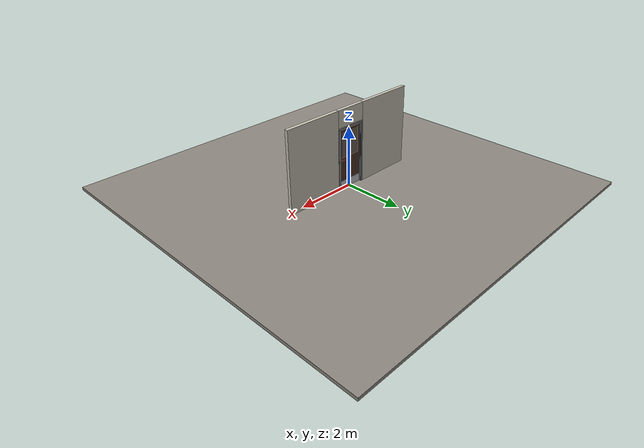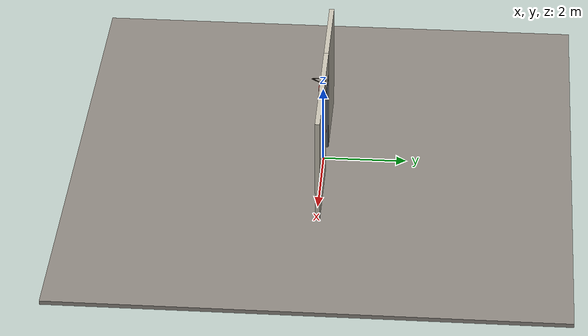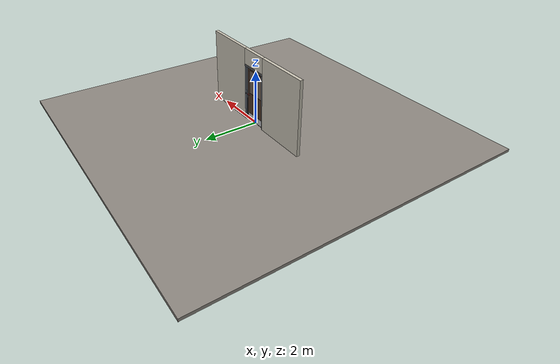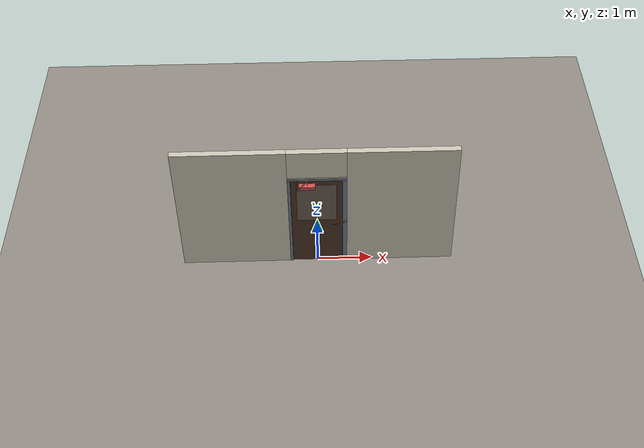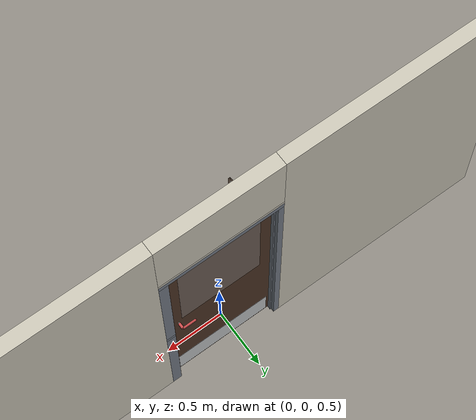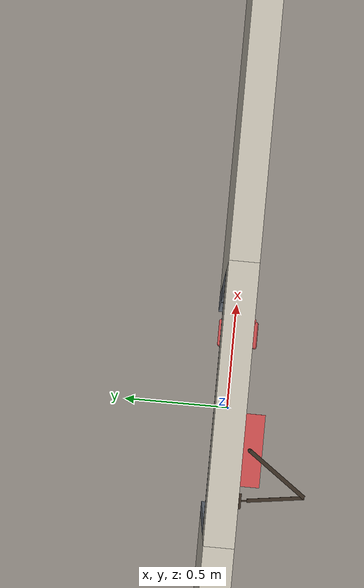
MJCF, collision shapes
<?xml version="1.0" ?>
<mujoco model="db0826_swing_single_full">
  <compiler angle="radian" meshdir="../../hardware" texturedir="../../textures" autolimits="true" inertiafromgeom="false"/>
  <option timestep="0.002" integrator="implicitfast" cone="elliptic" impratio="10" noslip_iterations="3">
    <flag multiccd="enable"/>
  </option>
  <size memory="16M"/>
  <default>
    <geom condim="4" solref="0.005 1" solimp="0.95 0.99 0.001"/>
    <joint solreflimit="0.005 1" solimplimit="0.95 0.99 0.001"/>
    <tendon solreflimit="0.005 1"/>
    <equality solref="0.002 1"/>
  </default>
  <visual>
    <headlight ambient="0.4 0.4 0.4" diffuse="0.7 0.7 0.7" specular="0.2 0.2 0.2"/>
    <quality shadowsize="4096"/>
    <map znear="0.01" zfar="60"/>
  </visual>
  <asset>
    <mesh name="closer_body_fdc4667657" file="closer_body_fdc4667657.obj"/>
    <mesh name="hinge_1cb808d647" file="hinge_1cb808d647.obj"/>
    <mesh name="hinge_jamb_7842e12854" file="hinge_jamb_7842e12854.obj"/>
    <mesh name="lever_6268dcb28c" file="lever_6268dcb28c.obj"/>
    <material name="mat_floor" rgba="0.55 0.53 0.5 1" specular="0.2" shininess="0.15" reflectance="0"/>
    <material name="mat_wall" rgba="0.78 0.76 0.7 1" specular="0.2" shininess="0.1" reflectance="0"/>
    <material name="mat_leaf" rgba="0.3 0.2 0.14 1" specular="0.2" shininess="0.34" reflectance="0"/>
    <material name="mat_glass" rgba="0.85 0.92 0.95 0.25" specular="0.2" shininess="0.95" reflectance="0.1"/>
    <material name="mat_hinge" rgba="0.65 0.66 0.68 1" specular="0.74" shininess="0.5" reflectance="0.36"/>
    <material name="mat_op_stainless" rgba="0.75 0.76 0.77 1" specular="0.8" shininess="0.65" reflectance="0.4"/>
    <material name="mat_trim" rgba="0.85 0.66 0.3 1" specular="0.8" shininess="0.75" reflectance="0.4"/>
    <material name="mat_bolt" rgba="0.85 0.66 0.3 1" specular="0.8" shininess="0.75" reflectance="0.4"/>
    <material name="mat_frame" rgba="0.45 0.48 0.52 1" specular="0.32" shininess="0.6" reflectance="0.08"/>
    <material name="mat_closer" rgba="0.22 0.17 0.13 1" specular="0.8" shininess="0.6" reflectance="0.4"/>
    <material name="mat_kick" rgba="0.75 0.76 0.77 1" specular="0.8" shininess="0.65" reflectance="0.4"/>
    <texture name="skybox" type="skybox" builtin="gradient" rgb1="0.6 0.7 0.85" rgb2="0.9 0.92 0.95" width="256" height="256"/>
  </asset>
  <worldbody>
    <light name="sun" pos="1.5 -2.5 4" dir="-0.3 0.5 -0.8" directional="true" diffuse="0.8 0.8 0.8" specular="0.3 0.3 0.3" castshadow="true"/>
    <light name="fill" pos="-1.5 2.5 3" dir="0.3 -0.5 -0.7" directional="true" diffuse="0.35 0.35 0.4" castshadow="false"/>
    <camera name="robot_view" pos="0 -2.513687 1.734312" xyaxes="1 0 0 0 0.26963 0.962964" fovy="52"/>
    <camera name="far_view" pos="0 2.570688 1.734312" xyaxes="-1 0 0 0 -0.26963 0.962964" fovy="52"/>
    <camera name="iso" pos="1.932062 -2.106937 2.141063" xyaxes="0.741536 0.670913 0 -0.242917 0.268487 0.932151" fovy="46"/>
    <camera name="detail_handle" pos="0.4705 -0.877 1.296" xyaxes="0.97561 0.219512 0 -0.070934 0.315262 0.94635" fovy="38"/>
    <geom name="floor" type="box" size="6 6 0.05" pos="0 0 -0.05" material="mat_floor" group="0" contype="1" conaffinity="1" friction="0.8 0.005 0.0001" density="2400"/>
    <geom name="wall_left" type="box" size="0.99475 0.0575 1.35" pos="-1.50525 0.0285 1.35" material="mat_wall" group="0" contype="1" conaffinity="1" friction="0.6 0.005 0.0001" density="800"/>
    <geom name="wall_right" type="box" size="0.97975 0.0575 1.35" pos="1.52025 0.0285 1.35" material="mat_wall" group="0" contype="1" conaffinity="1" friction="0.6 0.005 0.0001" density="800"/>
    <geom name="wall_header" type="box" size="0.5255 0.0575 0.2875" pos="0.015 0.0285 2.4125" material="mat_wall" group="0" contype="1" conaffinity="1" friction="0.6 0.005 0.0001" density="800"/>
    <geom name="hinge_0_jamb" type="mesh" mesh="hinge_jamb_7842e12854" pos="-0.4575 -0.029 0.259" material="mat_hinge" group="1" contype="0" conaffinity="0" density="7850"/>
    <geom name="hinge_1_jamb" type="mesh" mesh="hinge_jamb_7842e12854" pos="-0.4575 -0.029 1.025" material="mat_hinge" group="1" contype="0" conaffinity="0" density="7850"/>
    <geom name="hinge_2_jamb" type="mesh" mesh="hinge_jamb_7842e12854" pos="-0.4575 -0.029 1.861" material="mat_hinge" group="1" contype="0" conaffinity="0" density="7850"/>
    <geom name="jamb_hinge" type="box" size="0.025 0.0575 1.0225" pos="-0.4855 0.0285 1.0225" material="mat_frame" group="0" contype="1" conaffinity="1" friction="0.6 0.005 0.0001" density="300"/>
    <geom name="strike_1016_wall_n" type="box" size="0.04 0.03825 0.0183" pos="0.5005 0.04775 1.016" material="mat_frame" group="0" contype="1" conaffinity="1" friction="0.6 0.005 0.0001" density="300"/>
    <geom name="strike_1016_wall_p" type="box" size="0.04 0.008 0.0183" pos="0.5005 -0.0175 1.016" material="mat_frame" group="0" contype="1" conaffinity="1" friction="0.6 0.005 0.0001" density="300"/>
    <geom name="strike_1016_ramp" type="box" size="0.04 0.018028 0.0183" pos="0.503782 -0.018312 1.016" quat="0.957092 0 0 0.289784" material="mat_frame" group="0" contype="1" conaffinity="1" friction="0.12 0.005 0.0001" density="300"/>
    <geom name="strike_1016_back" type="box" size="0.0285 0.0095 0.0183" pos="0.512 0 1.016" material="mat_frame" group="0" contype="1" conaffinity="1" friction="0.6 0.005 0.0001" density="300"/>
    <geom name="jamb_strike_0" type="box" size="0.04 0.0575 0.49885" pos="0.5005 0.0285 0.49885" material="mat_frame" group="0" contype="1" conaffinity="1" friction="0.6 0.005 0.0001" density="300"/>
    <geom name="jamb_strike_1" type="box" size="0.04 0.0575 0.50535" pos="0.5005 0.0285 1.53965" material="mat_frame" group="0" contype="1" conaffinity="1" friction="0.6 0.005 0.0001" density="300"/>
    <geom name="jamb_head" type="box" size="0.5255 0.0575 0.025" pos="0.015 0.0285 2.07" material="mat_frame" group="0" contype="1" conaffinity="1" friction="0.6 0.005 0.0001" density="300"/>
    <geom name="head_stud" type="box" size="0.5255 0.0575 0.015" pos="0.015 0.0285 2.11" material="mat_wall" group="0" contype="1" conaffinity="1" friction="0.6 0.005 0.0001" density="500"/>
    <geom name="stop_hinge" type="box" size="0.0055 0.016 1.0225" pos="-0.455 0.0385 1.0225" material="mat_frame" group="0" contype="1" conaffinity="1" friction="0.6 0.005 0.0001" density="300"/>
    <geom name="stop_strike" type="box" size="0.0055 0.016 1.0225" pos="0.455 0.0385 1.0225" material="mat_frame" group="0" contype="1" conaffinity="1" friction="0.6 0.005 0.0001" density="300"/>
    <geom name="stop_head" type="box" size="0.4605 0.016 0.0055" pos="0 0.0385 2.0395" material="mat_frame" group="0" contype="1" conaffinity="1" friction="0.6 0.005 0.0001" density="300"/>
    <geom name="closer_bracket" type="box" size="0.03 0.012 0.014" pos="-0.3605 -0.041 2.075" material="mat_closer" group="1" contype="0" conaffinity="0" density="2700"/>
    <site name="approach_point" pos="0 -1.5 0" quat="1 0 0 0" size="0.05" rgba="0.2 0.9 0.2 0.5" group="4"/>
    <site name="goal_point" pos="0 1.5 0" quat="1 0 0 0" size="0.05" rgba="0.2 0.9 0.2 0.5" group="4"/>
    <site name="door_plane_center" pos="0 0 1.0225" quat="1 0 0 0" size="0.02" rgba="0.2 0.9 0.2 0.5" group="4"/>
    <body name="leaf" pos="-0.4605 0 0">
      <inertial pos="0.415599 -0.017187 1.217005" mass="56.089685" quat="-0.494805 0.46835 0.515455 0.519734" diaginertia="3.265308621 25.826414682 28.994099379"/>
      <joint name="leaf_hinge" type="hinge" axis="0 0 -1" pos="0.003 -0.029 0" limited="true" range="0 1.570796" damping="12.25611" frictionloss="1.115532" stiffness="11.567381" springref="-1.882881" armature="0.02"/>
      <geom name="leaf_slab" type="box" size="0.457 0.022 1.016" pos="0.46 0 1.025" material="mat_leaf" group="0" contype="1" conaffinity="1" friction="0.35 0.005 0.0001" density="1"/>
      <geom name="leaf_glass_0" type="box" size="0.35646 0.0228 0.43688" pos="0.46 0 1.50252" material="mat_glass" group="1" contype="0" conaffinity="0" density="1"/>
      <geom name="hinge_0" type="mesh" mesh="hinge_1cb808d647" pos="0.003 -0.029 0.259" material="mat_hinge" group="1" contype="0" conaffinity="0" density="7850"/>
      <geom name="hinge_1" type="mesh" mesh="hinge_1cb808d647" pos="0.003 -0.029 1.025" material="mat_hinge" group="1" contype="0" conaffinity="0" density="7850"/>
      <geom name="hinge_2" type="mesh" mesh="hinge_1cb808d647" pos="0.003 -0.029 1.861" material="mat_hinge" group="1" contype="0" conaffinity="0" density="7850"/>
      <geom name="leaf_latch_bolt_faceplate" type="box" size="0.0006 0.014 0.0283" pos="0.9164 0 1.016" material="mat_bolt" group="1" contype="0" conaffinity="0" density="8500"/>
      <geom name="closer_body" type="mesh" mesh="closer_body_fdc4667657" pos="0.3 -0.022 1.952" quat="0.707107 0.707107 0 0" material="mat_closer" group="1" contype="0" conaffinity="0" density="2000"/>
      <geom name="closer_body_col" type="box" size="0.145 0.05 0.035" pos="0.3 -0.072 1.952" material="mat_closer" group="3" contype="1" conaffinity="1" rgba="0.8 0.3 0.3 0.25" friction="0.6 0.005 0.0001" density="2000"/>
      <geom name="closer_pinion_shaft" type="cylinder" size="0.008 0.0615" pos="0.3 -0.072 2.0135" material="mat_closer" group="1" contype="0" conaffinity="0" density="2700"/>
      <geom name="kick_plate_p" type="box" size="0.427 0.0008 0.125" pos="0.46 0.0228 0.144" material="mat_kick" group="2" contype="0" conaffinity="0" density="7900"/>
      <site name="leaf_edge_mid" pos="0.917 0 1.016" quat="1 0 0 0" size="0.02" rgba="0.2 0.9 0.2 0.5" group="4"/>
      <body name="leaf_handle" pos="0.847 0 1.016">
        <inertial pos="-0.035149 0 0" mass="1.038236" quat="0 0.707107 0.707107 0" diaginertia="0.002348364 0.00382535 0.005606687"/>
        <joint name="leaf_handle_hinge" type="hinge" axis="0 -1 0" limited="true" range="0 0.96" damping="0.255791" frictionloss="0.05" stiffness="1.2" springref="-0.583333" armature="0.01"/>
        <geom name="leaf_handle_spindle" type="cylinder" size="0.006 0.03" pos="0 0 0" quat="0.707107 -0.707107 0 0" material="mat_op_stainless" group="1" contype="0" conaffinity="0" density="7850"/>
        <geom name="leaf_handle_lever_n" type="mesh" mesh="lever_6268dcb28c" pos="0 -0.022 0" quat="0.707107 0.707107 0 0" material="mat_op_stainless" group="1" contype="0" conaffinity="0" density="3000"/>
        <geom name="leaf_handle_lever_col_n" type="capsule" size="0.0095 0.0505" pos="-0.06 -0.077 0" quat="0.707107 0 -0.707107 0" material="mat_op_stainless" group="3" contype="1" conaffinity="1" rgba="0.8 0.3 0.3 0.25" friction="0.7 0.01 0.0001" density="3000"/>
        <geom name="leaf_handle_hub_col_n" type="cylinder" size="0.012 0.022" pos="0 -0.052 0" quat="0.707107 -0.707107 0 0" material="mat_op_stainless" group="3" contype="1" conaffinity="1" rgba="0.8 0.3 0.3 0.25" friction="0.6 0.005 0.0001" density="3000"/>
        <geom name="leaf_handle_lever_p" type="mesh" mesh="lever_6268dcb28c" pos="0 0.022 0" quat="-0.707107 0.707107 0 0" material="mat_op_stainless" group="1" contype="0" conaffinity="0" density="3000"/>
        <geom name="leaf_handle_lever_col_p" type="capsule" size="0.0095 0.0505" pos="-0.06 0.077 0" quat="0.707107 0 -0.707107 0" material="mat_op_stainless" group="3" contype="1" conaffinity="1" rgba="0.8 0.3 0.3 0.25" friction="0.7 0.01 0.0001" density="3000"/>
        <geom name="leaf_handle_hub_col_p" type="cylinder" size="0.012 0.022" pos="0 0.052 0" quat="0.707107 -0.707107 0 0" material="mat_op_stainless" group="3" contype="1" conaffinity="1" rgba="0.8 0.3 0.3 0.25" friction="0.6 0.005 0.0001" density="3000"/>
        <site name="leaf_handle_grip_n" pos="-0.096 -0.077 0" quat="1 0 0 0" size="0.012" rgba="0.2 0.9 0.2 0.5" group="4"/>
        <site name="leaf_handle_grip_p" pos="-0.096 0.077 0" quat="1 0 0 0" size="0.012" rgba="0.2 0.9 0.2 0.5" group="4"/>
      </body>
      <body name="leaf_latch_bolt" pos="0.917 0 1.016">
        <inertial pos="-0.0055 0 0" mass="0.074627" quat="0.92388 -0.382683 0 0" diaginertia="0.000002271 0.000013255 0.000013255"/>
        <joint name="leaf_latch_bolt_slide" type="slide" axis="-1 0 0" limited="true" range="0 0.019" damping="2" frictionloss="0.3" stiffness="600" springref="-0.01" armature="0.1"/>
        <geom name="leaf_latch_bolt_capsule" type="capsule" size="0.008 0.0165" pos="-0.0055 0 0" quat="0.707107 0 0.707107 0" material="mat_bolt" group="0" contype="1" conaffinity="1" friction="0.2 0.005 0.0001" density="8500"/>
      </body>
      <body name="closer_arm_main" pos="0.3 -0.072 2.075" quat="0.454107 0 0 -0.890947">
        <inertial pos="0.14 0 0" mass="0.12096" quat="1 0 0 0" diaginertia="0.000003588 0.00079128 0.000792852"/>
        <joint name="closer_pinion" type="hinge" axis="0 0 1" limited="false" damping="0.01" armature="0.002"/>
        <geom name="closer_arm_main_geom" type="box" size="0.14 0.008 0.005" pos="0.14 0 0" material="mat_closer" group="1" contype="0" conaffinity="0" density="2700"/>
        <body name="closer_arm_fore" pos="0.28 0 0" quat="-0.373215 0 0 0.927745">
          <inertial pos="0.128088 0 0" mass="0.076531" quat="1 0 0 0" diaginertia="0.000001771 0.000437665 0.000438201"/>
          <joint name="closer_elbow" type="hinge" axis="0 0 1" limited="false" damping="0.01" armature="0.002"/>
          <geom name="closer_arm_fore_geom" type="box" size="0.1125 0.007 0.004" pos="0.1125 0 0" material="mat_closer" group="1" contype="0" conaffinity="0" density="2700"/>
          <geom name="closer_fore_neck" type="box" size="0.0175 0.003 0.003" pos="0.2425 0 0" material="mat_closer" group="1" contype="0" conaffinity="0" density="2700"/>
          <geom name="closer_fore_pivot" type="cylinder" size="0.005 0.012" pos="0.26 0 0" material="mat_closer" group="1" contype="0" conaffinity="0" density="2700"/>
        </body>
      </body>
    </body>
  </worldbody>
  <tendon>
    <fixed name="leaf_latch_bolt_coupling" limited="true" range="0 10">
      <joint joint="leaf_latch_bolt_slide" coef="1"/>
      <joint joint="leaf_handle_hinge" coef="-0.020879"/>
    </fixed>
  </tendon>
  <equality>
    <connect name="closer_arm_connect" body1="closer_arm_fore" body2="world" anchor="0.26 0 0" active="true"/>
  </equality>
  <contact>
    <exclude body1="closer_arm_main" body2="leaf"/>
    <exclude body1="closer_arm_fore" body2="leaf"/>
    <exclude body1="closer_arm_main" body2="closer_arm_fore"/>
  </contact>
  <sensor>
    <jointpos name="leaf_hinge_pos" joint="leaf_hinge"/>
    <jointvel name="leaf_hinge_vel" joint="leaf_hinge"/>
    <jointpos name="leaf_handle_hinge_pos" joint="leaf_handle_hinge"/>
    <jointvel name="leaf_handle_hinge_vel" joint="leaf_handle_hinge"/>
    <jointpos name="leaf_latch_bolt_slide_pos" joint="leaf_latch_bolt_slide"/>
    <jointvel name="leaf_latch_bolt_slide_vel" joint="leaf_latch_bolt_slide"/>
  </sensor>
</mujoco>
